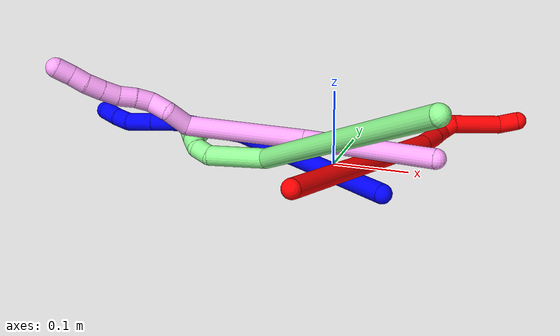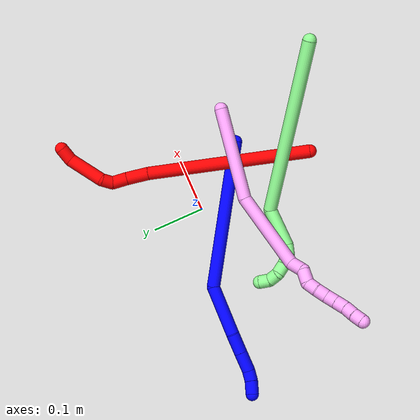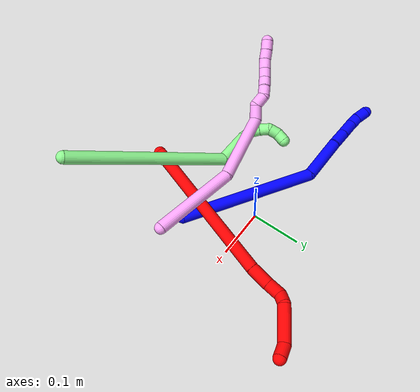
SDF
<sdf version="1.7">
 <world name="default">
  <model name="1">
   <static>0</static>
   <link name="1">
    <collision name="collision-cylinder-e_1_1_4">
     <pose>-0.089953 0.033095 -0.102638 -2.82968 -0.695203 2.32269</pose>
     <geometry><cylinder><radius>0.0125</radius><length>0.280866</length></cylinder></geometry>
     <surface>
      <friction><ode><mu>1.16</mu><mu2>1.16</mu2><slip1>0</slip1><slip2>0</slip2></ode></friction>
      <contact><ode><kp>1e+06</kp><kd>1</kd><max_vel>0</max_vel><min_depth>0.001</min_depth></ode></contact>
     </surface>
    </collision>
    <visual name="visual-cylinder-e_1_1_4">
     <pose>-0.089953 0.033095 -0.102638 -2.82968 -0.695203 2.32269</pose>
     <geometry><cylinder><radius>0.0125</radius><length>0.280866</length></cylinder></geometry>
     <material><ambient>0 0 1 1</ambient></material>
    </visual>
    <collision name="collision-cylinder-e_2_4_5">
     <pose>-0.217499 0.092152 -0.220171 -2.09164 -0.898374 1.38825</pose>
     <geometry><cylinder><radius>0.0125</radius><length>0.096107</length></cylinder></geometry>
     <surface>
      <friction><ode><mu>1.16</mu><mu2>1.16</mu2><slip1>0</slip1><slip2>0</slip2></ode></friction>
      <contact><ode><kp>1e+06</kp><kd>1</kd><max_vel>0</max_vel><min_depth>0.001</min_depth></ode></contact>
     </surface>
    </collision>
    <visual name="visual-cylinder-e_2_4_5">
     <pose>-0.217499 0.092152 -0.220171 -2.09164 -0.898374 1.38825</pose>
     <geometry><cylinder><radius>0.0125</radius><length>0.096107</length></cylinder></geometry>
     <material><ambient>0 0 1 1</ambient></material>
    </visual>
    <collision name="collision-cylinder-e_3_5_6">
     <pose>-0.272067 0.125997 -0.240055 -2.13517 -1.06829 1.64261</pose>
     <geometry><cylinder><radius>0.0125</radius><length>0.038739</length></cylinder></geometry>
     <surface>
      <friction><ode><mu>1.16</mu><mu2>1.16</mu2><slip1>0</slip1><slip2>0</slip2></ode></friction>
      <contact><ode><kp>1e+06</kp><kd>1</kd><max_vel>0</max_vel><min_depth>0.001</min_depth></ode></contact>
     </surface>
    </collision>
    <visual name="visual-cylinder-e_3_5_6">
     <pose>-0.272067 0.125997 -0.240055 -2.13517 -1.06829 1.64261</pose>
     <geometry><cylinder><radius>0.0125</radius><length>0.038739</length></cylinder></geometry>
     <material><ambient>0 0 1 1</ambient></material>
    </visual>
    <collision name="collision-cylinder-e_4_6_7">
     <pose>-0.306168 0.142029 -0.249932 -2.11099 -1.06421 1.60958</pose>
     <geometry><cylinder><radius>0.0125</radius><length>0.039171</length></cylinder></geometry>
     <surface>
      <friction><ode><mu>1.16</mu><mu2>1.16</mu2><slip1>0</slip1><slip2>0</slip2></ode></friction>
      <contact><ode><kp>1e+06</kp><kd>1</kd><max_vel>0</max_vel><min_depth>0.001</min_depth></ode></contact>
     </surface>
    </collision>
    <visual name="visual-cylinder-e_4_6_7">
     <pose>-0.306168 0.142029 -0.249932 -2.11099 -1.06421 1.60958</pose>
     <geometry><cylinder><radius>0.0125</radius><length>0.039171</length></cylinder></geometry>
     <material><ambient>0 0 1 1</ambient></material>
    </visual>
    <collision name="collision-cylinder-e_5_7_8">
     <pose>-0.330048 0.156191 -0.259514 -2.23375 -0.724807 1.32124</pose>
     <geometry><cylinder><radius>0.0125</radius><length>0.020378</length></cylinder></geometry>
     <surface>
      <friction><ode><mu>1.16</mu><mu2>1.16</mu2><slip1>0</slip1><slip2>0</slip2></ode></friction>
      <contact><ode><kp>1e+06</kp><kd>1</kd><max_vel>0</max_vel><min_depth>0.001</min_depth></ode></contact>
     </surface>
    </collision>
    <visual name="visual-cylinder-e_5_7_8">
     <pose>-0.330048 0.156191 -0.259514 -2.23375 -0.724807 1.32124</pose>
     <geometry><cylinder><radius>0.0125</radius><length>0.020378</length></cylinder></geometry>
     <material><ambient>0 0 1 1</ambient></material>
    </visual>
    <collision name="collision-cylinder-e_6_8_2">
     <pose>-0.344292 0.1685 -0.271777 -2.44764 -0.650235 1.50061</pose>
     <geometry><cylinder><radius>0.0125</radius><length>0.02474</length></cylinder></geometry>
     <surface>
      <friction><ode><mu>1.16</mu><mu2>1.16</mu2><slip1>0</slip1><slip2>0</slip2></ode></friction>
      <contact><ode><kp>1e+06</kp><kd>1</kd><max_vel>0</max_vel><min_depth>0.001</min_depth></ode></contact>
     </surface>
    </collision>
    <visual name="visual-cylinder-e_6_8_2">
     <pose>-0.344292 0.1685 -0.271777 -2.44764 -0.650235 1.50061</pose>
     <geometry><cylinder><radius>0.0125</radius><length>0.02474</length></cylinder></geometry>
     <material><ambient>0 0 1 1</ambient></material>
    </visual>
    <collision name="collision-sphere-2">
     <pose>-0.35178 0.174797 -0.279345 0 -0 0</pose>
     <geometry><sphere><radius>0.0125</radius></sphere></geometry>
     <surface>
      <friction><ode><mu>1.16</mu><mu2>1.16</mu2><slip1>0</slip1><slip2>0</slip2></ode></friction>
      <contact><ode><kp>1e+06</kp><kd>1</kd><max_vel>0</max_vel><min_depth>0.001</min_depth></ode></contact>
     </surface>
    </collision>
    <visual name="visual-sphere-2">
     <pose>-0.35178 0.174797 -0.279345 0 -0 0</pose>
     <geometry><sphere><radius>0.0125</radius></sphere></geometry>
     <material><ambient>0 0 1 1</ambient></material>
    </visual>
    <collision name="collision-sphere-4">
     <pose>-0.179906 0.06619 -0.205276 0 -0 0</pose>
     <geometry><sphere><radius>0.0125</radius></sphere></geometry>
     <surface>
      <friction><ode><mu>1.16</mu><mu2>1.16</mu2><slip1>0</slip1><slip2>0</slip2></ode></friction>
      <contact><ode><kp>1e+06</kp><kd>1</kd><max_vel>0</max_vel><min_depth>0.001</min_depth></ode></contact>
     </surface>
    </collision>
    <visual name="visual-sphere-4">
     <pose>-0.179906 0.06619 -0.205276 0 -0 0</pose>
     <geometry><sphere><radius>0.0125</radius></sphere></geometry>
     <material><ambient>0 0 1 1</ambient></material>
    </visual>
    <collision name="collision-sphere-1">
     <geometry><sphere><radius>0.0125</radius></sphere></geometry>
     <surface>
      <friction><ode><mu>1.16</mu><mu2>1.16</mu2><slip1>0</slip1><slip2>0</slip2></ode></friction>
      <contact><ode><kp>1e+06</kp><kd>1</kd><max_vel>0</max_vel><min_depth>0.001</min_depth></ode></contact>
     </surface>
    </collision>
    <visual name="visual-sphere-1">
     <geometry><sphere><radius>0.0125</radius></sphere></geometry>
     <material><ambient>0 0 1 1</ambient></material>
    </visual>
    <collision name="collision-sphere-8">
     <pose>-0.336803 0.162203 -0.264208 0 -0 0</pose>
     <geometry><sphere><radius>0.0125</radius></sphere></geometry>
     <surface>
      <friction><ode><mu>1.16</mu><mu2>1.16</mu2><slip1>0</slip1><slip2>0</slip2></ode></friction>
      <contact><ode><kp>1e+06</kp><kd>1</kd><max_vel>0</max_vel><min_depth>0.001</min_depth></ode></contact>
     </surface>
    </collision>
    <visual name="visual-sphere-8">
     <pose>-0.336803 0.162203 -0.264208 0 -0 0</pose>
     <geometry><sphere><radius>0.0125</radius></sphere></geometry>
     <material><ambient>0 0 1 1</ambient></material>
    </visual>
    <collision name="collision-sphere-5">
     <pose>-0.255092 0.118115 -0.235065 0 -0 0</pose>
     <geometry><sphere><radius>0.0125</radius></sphere></geometry>
     <surface>
      <friction><ode><mu>1.16</mu><mu2>1.16</mu2><slip1>0</slip1><slip2>0</slip2></ode></friction>
      <contact><ode><kp>1e+06</kp><kd>1</kd><max_vel>0</max_vel><min_depth>0.001</min_depth></ode></contact>
     </surface>
    </collision>
    <visual name="visual-sphere-5">
     <pose>-0.255092 0.118115 -0.235065 0 -0 0</pose>
     <geometry><sphere><radius>0.0125</radius></sphere></geometry>
     <material><ambient>0 0 1 1</ambient></material>
    </visual>
    <collision name="collision-sphere-6">
     <pose>-0.289042 0.133879 -0.245045 0 -0 0</pose>
     <geometry><sphere><radius>0.0125</radius></sphere></geometry>
     <surface>
      <friction><ode><mu>1.16</mu><mu2>1.16</mu2><slip1>0</slip1><slip2>0</slip2></ode></friction>
      <contact><ode><kp>1e+06</kp><kd>1</kd><max_vel>0</max_vel><min_depth>0.001</min_depth></ode></contact>
     </surface>
    </collision>
    <visual name="visual-sphere-6">
     <pose>-0.289042 0.133879 -0.245045 0 -0 0</pose>
     <geometry><sphere><radius>0.0125</radius></sphere></geometry>
     <material><ambient>0 0 1 1</ambient></material>
    </visual>
    <collision name="collision-sphere-7">
     <pose>-0.323293 0.150179 -0.254819 0 -0 0</pose>
     <geometry><sphere><radius>0.0125</radius></sphere></geometry>
     <surface>
      <friction><ode><mu>1.16</mu><mu2>1.16</mu2><slip1>0</slip1><slip2>0</slip2></ode></friction>
      <contact><ode><kp>1e+06</kp><kd>1</kd><max_vel>0</max_vel><min_depth>0.001</min_depth></ode></contact>
     </surface>
    </collision>
    <visual name="visual-sphere-7">
     <pose>-0.323293 0.150179 -0.254819 0 -0 0</pose>
     <geometry><sphere><radius>0.0125</radius></sphere></geometry>
     <material><ambient>0 0 1 1</ambient></material>
    </visual>
    <inertial>
     <pose>-0.167887 0.071895 -0.162178 0 -0 0</pose>
     <mass>0.5</mass>
     <inertia>
      <ixx>0.000106</ixx>
      <ixy>0</ixy>
      <ixz>0</ixz>
      <iyy>0.002642</iyy>
      <iyz>0</iyz>
      <izz>0.000755</izz>
     </inertia>
    </inertial>
   </link>
   <pose>0.091762 -0.111055 0.012077 1.858 -0.58859 0.115646</pose>
  </model>
  <model name="2">
   <static>0</static>
   <link name="2">
    <collision name="collision-cylinder-e_1_1_4">
     <pose>0.031861 0.079482 -0.128216 -2.58666 0.208144 -0.703006</pose>
     <geometry><cylinder><radius>0.0125</radius><length>0.308362</length></cylinder></geometry>
     <surface>
      <friction><ode><mu>1.16</mu><mu2>1.16</mu2><slip1>0</slip1><slip2>0</slip2></ode></friction>
      <contact><ode><kp>1e+06</kp><kd>1</kd><max_vel>0</max_vel><min_depth>0.001</min_depth></ode></contact>
     </surface>
    </collision>
    <visual name="visual-cylinder-e_1_1_4">
     <pose>0.031861 0.079482 -0.128216 -2.58666 0.208144 -0.703006</pose>
     <geometry><cylinder><radius>0.0125</radius><length>0.308362</length></cylinder></geometry>
     <material><ambient>1 0 0 1</ambient></material>
    </visual>
    <collision name="collision-cylinder-e_2_4_5">
     <pose>0.065648 0.169476 -0.274517 -2.61505 0.091858 -0.337799</pose>
     <geometry><cylinder><radius>0.0125</radius><length>0.042014</length></cylinder></geometry>
     <surface>
      <friction><ode><mu>1.16</mu><mu2>1.16</mu2><slip1>0</slip1><slip2>0</slip2></ode></friction>
      <contact><ode><kp>1e+06</kp><kd>1</kd><max_vel>0</max_vel><min_depth>0.001</min_depth></ode></contact>
     </surface>
    </collision>
    <visual name="visual-cylinder-e_2_4_5">
     <pose>0.065648 0.169476 -0.274517 -2.61505 0.091858 -0.337799</pose>
     <geometry><cylinder><radius>0.0125</radius><length>0.042014</length></cylinder></geometry>
     <material><ambient>1 0 0 1</ambient></material>
    </visual>
    <collision name="collision-cylinder-e_3_5_6">
     <pose>0.068086 0.187019 -0.305416 -2.63981 0.034945 -0.136154</pose>
     <geometry><cylinder><radius>0.0125</radius><length>0.029249</length></cylinder></geometry>
     <surface>
      <friction><ode><mu>1.16</mu><mu2>1.16</mu2><slip1>0</slip1><slip2>0</slip2></ode></friction>
      <contact><ode><kp>1e+06</kp><kd>1</kd><max_vel>0</max_vel><min_depth>0.001</min_depth></ode></contact>
     </surface>
    </collision>
    <visual name="visual-cylinder-e_3_5_6">
     <pose>0.068086 0.187019 -0.305416 -2.63981 0.034945 -0.136154</pose>
     <geometry><cylinder><radius>0.0125</radius><length>0.029249</length></cylinder></geometry>
     <material><ambient>1 0 0 1</ambient></material>
    </visual>
    <collision name="collision-cylinder-e_4_6_7">
     <pose>0.069934 0.204233 -0.322584 -1.97481 0.120145 -0.181749</pose>
     <geometry><cylinder><radius>0.0125</radius><length>0.022312</length></cylinder></geometry>
     <surface>
      <friction><ode><mu>1.16</mu><mu2>1.16</mu2><slip1>0</slip1><slip2>0</slip2></ode></friction>
      <contact><ode><kp>1e+06</kp><kd>1</kd><max_vel>0</max_vel><min_depth>0.001</min_depth></ode></contact>
     </surface>
    </collision>
    <visual name="visual-cylinder-e_4_6_7">
     <pose>0.069934 0.204233 -0.322584 -1.97481 0.120145 -0.181749</pose>
     <geometry><cylinder><radius>0.0125</radius><length>0.022312</length></cylinder></geometry>
     <material><ambient>1 0 0 1</ambient></material>
    </visual>
    <collision name="collision-cylinder-e_5_7_8">
     <pose>0.092484 0.240317 -0.338347 -1.98571 0.64318 -0.94449</pose>
     <geometry><cylinder><radius>0.0125</radius><length>0.070738</length></cylinder></geometry>
     <surface>
      <friction><ode><mu>1.16</mu><mu2>1.16</mu2><slip1>0</slip1><slip2>0</slip2></ode></friction>
      <contact><ode><kp>1e+06</kp><kd>1</kd><max_vel>0</max_vel><min_depth>0.001</min_depth></ode></contact>
     </surface>
    </collision>
    <visual name="visual-cylinder-e_5_7_8">
     <pose>0.092484 0.240317 -0.338347 -1.98571 0.64318 -0.94449</pose>
     <geometry><cylinder><radius>0.0125</radius><length>0.070738</length></cylinder></geometry>
     <material><ambient>1 0 0 1</ambient></material>
    </visual>
    <collision name="collision-cylinder-e_6_8_2">
     <pose>0.120108 0.278213 -0.348464 -1.46357 0.488544 -0.440458</pose>
     <geometry><cylinder><radius>0.0125</radius><length>0.027325</length></cylinder></geometry>
     <surface>
      <friction><ode><mu>1.16</mu><mu2>1.16</mu2><slip1>0</slip1><slip2>0</slip2></ode></friction>
      <contact><ode><kp>1e+06</kp><kd>1</kd><max_vel>0</max_vel><min_depth>0.001</min_depth></ode></contact>
     </surface>
    </collision>
    <visual name="visual-cylinder-e_6_8_2">
     <pose>0.120108 0.278213 -0.348464 -1.46357 0.488544 -0.440458</pose>
     <geometry><cylinder><radius>0.0125</radius><length>0.027325</length></cylinder></geometry>
     <material><ambient>1 0 0 1</ambient></material>
    </visual>
    <collision name="collision-sphere-2">
     <pose>0.126521 0.290207 -0.347173 0 -0 0</pose>
     <geometry><sphere><radius>0.0125</radius></sphere></geometry>
     <surface>
      <friction><ode><mu>1.16</mu><mu2>1.16</mu2><slip1>0</slip1><slip2>0</slip2></ode></friction>
      <contact><ode><kp>1e+06</kp><kd>1</kd><max_vel>0</max_vel><min_depth>0.001</min_depth></ode></contact>
     </surface>
    </collision>
    <visual name="visual-sphere-2">
     <pose>0.126521 0.290207 -0.347173 0 -0 0</pose>
     <geometry><sphere><radius>0.0125</radius></sphere></geometry>
     <material><ambient>1 0 0 1</ambient></material>
    </visual>
    <collision name="collision-sphere-4">
     <pose>0.063721 0.158964 -0.256432 0 -0 0</pose>
     <geometry><sphere><radius>0.0125</radius></sphere></geometry>
     <surface>
      <friction><ode><mu>1.16</mu><mu2>1.16</mu2><slip1>0</slip1><slip2>0</slip2></ode></friction>
      <contact><ode><kp>1e+06</kp><kd>1</kd><max_vel>0</max_vel><min_depth>0.001</min_depth></ode></contact>
     </surface>
    </collision>
    <visual name="visual-sphere-4">
     <pose>0.063721 0.158964 -0.256432 0 -0 0</pose>
     <geometry><sphere><radius>0.0125</radius></sphere></geometry>
     <material><ambient>1 0 0 1</ambient></material>
    </visual>
    <collision name="collision-sphere-1">
     <geometry><sphere><radius>0.0125</radius></sphere></geometry>
     <surface>
      <friction><ode><mu>1.16</mu><mu2>1.16</mu2><slip1>0</slip1><slip2>0</slip2></ode></friction>
      <contact><ode><kp>1e+06</kp><kd>1</kd><max_vel>0</max_vel><min_depth>0.001</min_depth></ode></contact>
     </surface>
    </collision>
    <visual name="visual-sphere-1">
     <geometry><sphere><radius>0.0125</radius></sphere></geometry>
     <material><ambient>1 0 0 1</ambient></material>
    </visual>
    <collision name="collision-sphere-8">
     <pose>0.113696 0.266218 -0.349755 0 -0 0</pose>
     <geometry><sphere><radius>0.0125</radius></sphere></geometry>
     <surface>
      <friction><ode><mu>1.16</mu><mu2>1.16</mu2><slip1>0</slip1><slip2>0</slip2></ode></friction>
      <contact><ode><kp>1e+06</kp><kd>1</kd><max_vel>0</max_vel><min_depth>0.001</min_depth></ode></contact>
     </surface>
    </collision>
    <visual name="visual-sphere-8">
     <pose>0.113696 0.266218 -0.349755 0 -0 0</pose>
     <geometry><sphere><radius>0.0125</radius></sphere></geometry>
     <material><ambient>1 0 0 1</ambient></material>
    </visual>
    <collision name="collision-sphere-5">
     <pose>0.067575 0.179989 -0.292602 0 -0 0</pose>
     <geometry><sphere><radius>0.0125</radius></sphere></geometry>
     <surface>
      <friction><ode><mu>1.16</mu><mu2>1.16</mu2><slip1>0</slip1><slip2>0</slip2></ode></friction>
      <contact><ode><kp>1e+06</kp><kd>1</kd><max_vel>0</max_vel><min_depth>0.001</min_depth></ode></contact>
     </surface>
    </collision>
    <visual name="visual-sphere-5">
     <pose>0.067575 0.179989 -0.292602 0 -0 0</pose>
     <geometry><sphere><radius>0.0125</radius></sphere></geometry>
     <material><ambient>1 0 0 1</ambient></material>
    </visual>
    <collision name="collision-sphere-6">
     <pose>0.068597 0.194049 -0.31823 0 -0 0</pose>
     <geometry><sphere><radius>0.0125</radius></sphere></geometry>
     <surface>
      <friction><ode><mu>1.16</mu><mu2>1.16</mu2><slip1>0</slip1><slip2>0</slip2></ode></friction>
      <contact><ode><kp>1e+06</kp><kd>1</kd><max_vel>0</max_vel><min_depth>0.001</min_depth></ode></contact>
     </surface>
    </collision>
    <visual name="visual-sphere-6">
     <pose>0.068597 0.194049 -0.31823 0 -0 0</pose>
     <geometry><sphere><radius>0.0125</radius></sphere></geometry>
     <material><ambient>1 0 0 1</ambient></material>
    </visual>
    <collision name="collision-sphere-7">
     <pose>0.071271 0.214416 -0.326938 0 -0 0</pose>
     <geometry><sphere><radius>0.0125</radius></sphere></geometry>
     <surface>
      <friction><ode><mu>1.16</mu><mu2>1.16</mu2><slip1>0</slip1><slip2>0</slip2></ode></friction>
      <contact><ode><kp>1e+06</kp><kd>1</kd><max_vel>0</max_vel><min_depth>0.001</min_depth></ode></contact>
     </surface>
    </collision>
    <visual name="visual-sphere-7">
     <pose>0.071271 0.214416 -0.326938 0 -0 0</pose>
     <geometry><sphere><radius>0.0125</radius></sphere></geometry>
     <material><ambient>1 0 0 1</ambient></material>
    </visual>
    <inertial>
     <pose>0.051917 0.132516 -0.201314 0 -0 0</pose>
     <mass>0.5</mass>
     <inertia>
      <ixx>0.000294</ixx>
      <ixy>0</ixy>
      <ixz>0</ixz>
      <iyy>-0.002977</iyy>
      <iyz>0</iyz>
      <izz>-0.001855</izz>
     </inertia>
    </inertial>
   </link>
   <pose>0.016191 -0.227602 0.054486 1.05165 0.807233 -0.120804</pose>
  </model>
  <model name="4">
   <static>0</static>
   <link name="4">
    <collision name="collision-cylinder-e_1_1_4">
     <pose>-0.076758 0.009958 -0.037444 -2.88166 -1.10333 2.72304</pose>
     <geometry><cylinder><radius>0.0125</radius><length>0.171966</length></cylinder></geometry>
     <surface>
      <friction><ode><mu>1.16</mu><mu2>1.16</mu2><slip1>0</slip1><slip2>0</slip2></ode></friction>
      <contact><ode><kp>1e+06</kp><kd>1</kd><max_vel>0</max_vel><min_depth>0.001</min_depth></ode></contact>
     </surface>
    </collision>
    <visual name="visual-cylinder-e_1_1_4">
     <pose>-0.076758 0.009958 -0.037444 -2.88166 -1.10333 2.72304</pose>
     <geometry><cylinder><radius>0.0125</radius><length>0.171966</length></cylinder></geometry>
     <material><ambient>1 0.65098 0.996078 1</ambient></material>
    </visual>
    <collision name="collision-cylinder-e_2_4_5">
     <pose>-0.203613 0.02215 -0.128858 -3.10024 -0.747765 3.03627</pose>
     <geometry><cylinder><radius>0.0125</radius><length>0.147341</length></cylinder></geometry>
     <surface>
      <friction><ode><mu>1.16</mu><mu2>1.16</mu2><slip1>0</slip1><slip2>0</slip2></ode></friction>
      <contact><ode><kp>1e+06</kp><kd>1</kd><max_vel>0</max_vel><min_depth>0.001</min_depth></ode></contact>
     </surface>
    </collision>
    <visual name="visual-cylinder-e_2_4_5">
     <pose>-0.203613 0.02215 -0.128858 -3.10024 -0.747765 3.03627</pose>
     <geometry><cylinder><radius>0.0125</radius><length>0.147341</length></cylinder></geometry>
     <material><ambient>1 0.65098 0.996078 1</ambient></material>
    </visual>
    <collision name="collision-cylinder-e_3_5_6">
     <pose>-0.258124 0.015868 -0.194791 2.52301 -0.292076 -0.86276</pose>
     <geometry><cylinder><radius>0.0125</radius><length>0.030665</length></cylinder></geometry>
     <surface>
      <friction><ode><mu>1.16</mu><mu2>1.16</mu2><slip1>0</slip1><slip2>0</slip2></ode></friction>
      <contact><ode><kp>1e+06</kp><kd>1</kd><max_vel>0</max_vel><min_depth>0.001</min_depth></ode></contact>
     </surface>
    </collision>
    <visual name="visual-cylinder-e_3_5_6">
     <pose>-0.258124 0.015868 -0.194791 2.52301 -0.292076 -0.86276</pose>
     <geometry><cylinder><radius>0.0125</radius><length>0.030665</length></cylinder></geometry>
     <material><ambient>1 0.65098 0.996078 1</ambient></material>
    </visual>
    <collision name="collision-cylinder-e_4_6_7">
     <pose>-0.273324 0.003867 -0.212944 2.62869 -0.988267 -2.23558</pose>
     <geometry><cylinder><radius>0.0125</radius><length>0.025831</length></cylinder></geometry>
     <surface>
      <friction><ode><mu>1.16</mu><mu2>1.16</mu2><slip1>0</slip1><slip2>0</slip2></ode></friction>
      <contact><ode><kp>1e+06</kp><kd>1</kd><max_vel>0</max_vel><min_depth>0.001</min_depth></ode></contact>
     </surface>
    </collision>
    <visual name="visual-cylinder-e_4_6_7">
     <pose>-0.273324 0.003867 -0.212944 2.62869 -0.988267 -2.23558</pose>
     <geometry><cylinder><radius>0.0125</radius><length>0.025831</length></cylinder></geometry>
     <material><ambient>1 0.65098 0.996078 1</ambient></material>
    </visual>
    <collision name="collision-cylinder-e_5_7_8">
     <pose>-0.288219 -0.001769 -0.228152 2.90764 -0.417282 -2.12821</pose>
     <geometry><cylinder><radius>0.0125</radius><length>0.02028</length></cylinder></geometry>
     <surface>
      <friction><ode><mu>1.16</mu><mu2>1.16</mu2><slip1>0</slip1><slip2>0</slip2></ode></friction>
      <contact><ode><kp>1e+06</kp><kd>1</kd><max_vel>0</max_vel><min_depth>0.001</min_depth></ode></contact>
     </surface>
    </collision>
    <visual name="visual-cylinder-e_5_7_8">
     <pose>-0.288219 -0.001769 -0.228152 2.90764 -0.417282 -2.12821</pose>
     <geometry><cylinder><radius>0.0125</radius><length>0.02028</length></cylinder></geometry>
     <material><ambient>1 0.65098 0.996078 1</ambient></material>
    </visual>
    <collision name="collision-cylinder-e_6_8_9">
     <pose>-0.29633 -0.004602 -0.247085 3.07268 -0.38276 -2.78944</pose>
     <geometry><cylinder><radius>0.0125</radius><length>0.021429</length></cylinder></geometry>
     <surface>
      <friction><ode><mu>1.16</mu><mu2>1.16</mu2><slip1>0</slip1><slip2>0</slip2></ode></friction>
      <contact><ode><kp>1e+06</kp><kd>1</kd><max_vel>0</max_vel><min_depth>0.001</min_depth></ode></contact>
     </surface>
    </collision>
    <visual name="visual-cylinder-e_6_8_9">
     <pose>-0.29633 -0.004602 -0.247085 3.07268 -0.38276 -2.78944</pose>
     <geometry><cylinder><radius>0.0125</radius><length>0.021429</length></cylinder></geometry>
     <material><ambient>1 0.65098 0.996078 1</ambient></material>
    </visual>
    <collision name="collision-cylinder-e_7_9_10">
     <pose>-0.303759 -0.008525 -0.266349 2.80812 -0.333508 -1.57091</pose>
     <geometry><cylinder><radius>0.0125</radius><length>0.02094</length></cylinder></geometry>
     <surface>
      <friction><ode><mu>1.16</mu><mu2>1.16</mu2><slip1>0</slip1><slip2>0</slip2></ode></friction>
      <contact><ode><kp>1e+06</kp><kd>1</kd><max_vel>0</max_vel><min_depth>0.001</min_depth></ode></contact>
     </surface>
    </collision>
    <visual name="visual-cylinder-e_7_9_10">
     <pose>-0.303759 -0.008525 -0.266349 2.80812 -0.333508 -1.57091</pose>
     <geometry><cylinder><radius>0.0125</radius><length>0.02094</length></cylinder></geometry>
     <material><ambient>1 0.65098 0.996078 1</ambient></material>
    </visual>
    <collision name="collision-cylinder-e_8_10_11">
     <pose>-0.310645 -0.015603 -0.285001 2.75018 -0.330971 -1.40021</pose>
     <geometry><cylinder><radius>0.0125</radius><length>0.021285</length></cylinder></geometry>
     <surface>
      <friction><ode><mu>1.16</mu><mu2>1.16</mu2><slip1>0</slip1><slip2>0</slip2></ode></friction>
      <contact><ode><kp>1e+06</kp><kd>1</kd><max_vel>0</max_vel><min_depth>0.001</min_depth></ode></contact>
     </surface>
    </collision>
    <visual name="visual-cylinder-e_8_10_11">
     <pose>-0.310645 -0.015603 -0.285001 2.75018 -0.330971 -1.40021</pose>
     <geometry><cylinder><radius>0.0125</radius><length>0.021285</length></cylinder></geometry>
     <material><ambient>1 0.65098 0.996078 1</ambient></material>
    </visual>
    <collision name="collision-cylinder-e_9_11_12">
     <pose>-0.318578 -0.02393 -0.302158 2.62242 -0.459423 -1.44385</pose>
     <geometry><cylinder><radius>0.0125</radius><length>0.020184</length></cylinder></geometry>
     <surface>
      <friction><ode><mu>1.16</mu><mu2>1.16</mu2><slip1>0</slip1><slip2>0</slip2></ode></friction>
      <contact><ode><kp>1e+06</kp><kd>1</kd><max_vel>0</max_vel><min_depth>0.001</min_depth></ode></contact>
     </surface>
    </collision>
    <visual name="visual-cylinder-e_9_11_12">
     <pose>-0.318578 -0.02393 -0.302158 2.62242 -0.459423 -1.44385</pose>
     <geometry><cylinder><radius>0.0125</radius><length>0.020184</length></cylinder></geometry>
     <material><ambient>1 0.65098 0.996078 1</ambient></material>
    </visual>
    <collision name="collision-cylinder-e_10_12_2">
     <pose>-0.326852 -0.032466 -0.318377 2.69098 -0.388023 -1.4174</pose>
     <geometry><cylinder><radius>0.0125</radius><length>0.02008</length></cylinder></geometry>
     <surface>
      <friction><ode><mu>1.16</mu><mu2>1.16</mu2><slip1>0</slip1><slip2>0</slip2></ode></friction>
      <contact><ode><kp>1e+06</kp><kd>1</kd><max_vel>0</max_vel><min_depth>0.001</min_depth></ode></contact>
     </surface>
    </collision>
    <visual name="visual-cylinder-e_10_12_2">
     <pose>-0.326852 -0.032466 -0.318377 2.69098 -0.388023 -1.4174</pose>
     <geometry><cylinder><radius>0.0125</radius><length>0.02008</length></cylinder></geometry>
     <material><ambient>1 0.65098 0.996078 1</ambient></material>
    </visual>
    <collision name="collision-sphere-2">
     <pose>-0.330651 -0.036513 -0.326743 0 -0 0</pose>
     <geometry><sphere><radius>0.0125</radius></sphere></geometry>
     <surface>
      <friction><ode><mu>1.16</mu><mu2>1.16</mu2><slip1>0</slip1><slip2>0</slip2></ode></friction>
      <contact><ode><kp>1e+06</kp><kd>1</kd><max_vel>0</max_vel><min_depth>0.001</min_depth></ode></contact>
     </surface>
    </collision>
    <visual name="visual-sphere-2">
     <pose>-0.330651 -0.036513 -0.326743 0 -0 0</pose>
     <geometry><sphere><radius>0.0125</radius></sphere></geometry>
     <material><ambient>1 0.65098 0.996078 1</ambient></material>
    </visual>
    <collision name="collision-sphere-12">
     <pose>-0.323053 -0.028418 -0.310011 0 -0 0</pose>
     <geometry><sphere><radius>0.0125</radius></sphere></geometry>
     <surface>
      <friction><ode><mu>1.16</mu><mu2>1.16</mu2><slip1>0</slip1><slip2>0</slip2></ode></friction>
      <contact><ode><kp>1e+06</kp><kd>1</kd><max_vel>0</max_vel><min_depth>0.001</min_depth></ode></contact>
     </surface>
    </collision>
    <visual name="visual-sphere-12">
     <pose>-0.323053 -0.028418 -0.310011 0 -0 0</pose>
     <geometry><sphere><radius>0.0125</radius></sphere></geometry>
     <material><ambient>1 0.65098 0.996078 1</ambient></material>
    </visual>
    <collision name="collision-sphere-11">
     <pose>-0.314103 -0.019442 -0.294304 0 -0 0</pose>
     <geometry><sphere><radius>0.0125</radius></sphere></geometry>
     <surface>
      <friction><ode><mu>1.16</mu><mu2>1.16</mu2><slip1>0</slip1><slip2>0</slip2></ode></friction>
      <contact><ode><kp>1e+06</kp><kd>1</kd><max_vel>0</max_vel><min_depth>0.001</min_depth></ode></contact>
     </surface>
    </collision>
    <visual name="visual-sphere-11">
     <pose>-0.314103 -0.019442 -0.294304 0 -0 0</pose>
     <geometry><sphere><radius>0.0125</radius></sphere></geometry>
     <material><ambient>1 0.65098 0.996078 1</ambient></material>
    </visual>
    <collision name="collision-sphere-10">
     <pose>-0.307186 -0.011763 -0.275697 0 -0 0</pose>
     <geometry><sphere><radius>0.0125</radius></sphere></geometry>
     <surface>
      <friction><ode><mu>1.16</mu><mu2>1.16</mu2><slip1>0</slip1><slip2>0</slip2></ode></friction>
      <contact><ode><kp>1e+06</kp><kd>1</kd><max_vel>0</max_vel><min_depth>0.001</min_depth></ode></contact>
     </surface>
    </collision>
    <visual name="visual-sphere-10">
     <pose>-0.307186 -0.011763 -0.275697 0 -0 0</pose>
     <geometry><sphere><radius>0.0125</radius></sphere></geometry>
     <material><ambient>1 0.65098 0.996078 1</ambient></material>
    </visual>
    <collision name="collision-sphere-9">
     <pose>-0.300332 -0.005287 -0.257001 0 -0 0</pose>
     <geometry><sphere><radius>0.0125</radius></sphere></geometry>
     <surface>
      <friction><ode><mu>1.16</mu><mu2>1.16</mu2><slip1>0</slip1><slip2>0</slip2></ode></friction>
      <contact><ode><kp>1e+06</kp><kd>1</kd><max_vel>0</max_vel><min_depth>0.001</min_depth></ode></contact>
     </surface>
    </collision>
    <visual name="visual-sphere-9">
     <pose>-0.300332 -0.005287 -0.257001 0 -0 0</pose>
     <geometry><sphere><radius>0.0125</radius></sphere></geometry>
     <material><ambient>1 0.65098 0.996078 1</ambient></material>
    </visual>
    <collision name="collision-sphere-4">
     <pose>-0.153517 0.019917 -0.074889 0 -0 0</pose>
     <geometry><sphere><radius>0.0125</radius></sphere></geometry>
     <surface>
      <friction><ode><mu>1.16</mu><mu2>1.16</mu2><slip1>0</slip1><slip2>0</slip2></ode></friction>
      <contact><ode><kp>1e+06</kp><kd>1</kd><max_vel>0</max_vel><min_depth>0.001</min_depth></ode></contact>
     </surface>
    </collision>
    <visual name="visual-sphere-4">
     <pose>-0.153517 0.019917 -0.074889 0 -0 0</pose>
     <geometry><sphere><radius>0.0125</radius></sphere></geometry>
     <material><ambient>1 0.65098 0.996078 1</ambient></material>
    </visual>
    <collision name="collision-sphere-1">
     <geometry><sphere><radius>0.0125</radius></sphere></geometry>
     <surface>
      <friction><ode><mu>1.16</mu><mu2>1.16</mu2><slip1>0</slip1><slip2>0</slip2></ode></friction>
      <contact><ode><kp>1e+06</kp><kd>1</kd><max_vel>0</max_vel><min_depth>0.001</min_depth></ode></contact>
     </surface>
    </collision>
    <visual name="visual-sphere-1">
     <geometry><sphere><radius>0.0125</radius></sphere></geometry>
     <material><ambient>1 0.65098 0.996078 1</ambient></material>
    </visual>
    <collision name="collision-sphere-8">
     <pose>-0.292328 -0.003918 -0.23717 0 -0 0</pose>
     <geometry><sphere><radius>0.0125</radius></sphere></geometry>
     <surface>
      <friction><ode><mu>1.16</mu><mu2>1.16</mu2><slip1>0</slip1><slip2>0</slip2></ode></friction>
      <contact><ode><kp>1e+06</kp><kd>1</kd><max_vel>0</max_vel><min_depth>0.001</min_depth></ode></contact>
     </surface>
    </collision>
    <visual name="visual-sphere-8">
     <pose>-0.292328 -0.003918 -0.23717 0 -0 0</pose>
     <geometry><sphere><radius>0.0125</radius></sphere></geometry>
     <material><ambient>1 0.65098 0.996078 1</ambient></material>
    </visual>
    <collision name="collision-sphere-5">
     <pose>-0.253709 0.024383 -0.182828 0 -0 0</pose>
     <geometry><sphere><radius>0.0125</radius></sphere></geometry>
     <surface>
      <friction><ode><mu>1.16</mu><mu2>1.16</mu2><slip1>0</slip1><slip2>0</slip2></ode></friction>
      <contact><ode><kp>1e+06</kp><kd>1</kd><max_vel>0</max_vel><min_depth>0.001</min_depth></ode></contact>
     </surface>
    </collision>
    <visual name="visual-sphere-5">
     <pose>-0.253709 0.024383 -0.182828 0 -0 0</pose>
     <geometry><sphere><radius>0.0125</radius></sphere></geometry>
     <material><ambient>1 0.65098 0.996078 1</ambient></material>
    </visual>
    <collision name="collision-sphere-6">
     <pose>-0.262539 0.007353 -0.206753 0 -0 0</pose>
     <geometry><sphere><radius>0.0125</radius></sphere></geometry>
     <surface>
      <friction><ode><mu>1.16</mu><mu2>1.16</mu2><slip1>0</slip1><slip2>0</slip2></ode></friction>
      <contact><ode><kp>1e+06</kp><kd>1</kd><max_vel>0</max_vel><min_depth>0.001</min_depth></ode></contact>
     </surface>
    </collision>
    <visual name="visual-sphere-6">
     <pose>-0.262539 0.007353 -0.206753 0 -0 0</pose>
     <geometry><sphere><radius>0.0125</radius></sphere></geometry>
     <material><ambient>1 0.65098 0.996078 1</ambient></material>
    </visual>
    <collision name="collision-sphere-7">
     <pose>-0.284109 0.00038 -0.219135 0 -0 0</pose>
     <geometry><sphere><radius>0.0125</radius></sphere></geometry>
     <surface>
      <friction><ode><mu>1.16</mu><mu2>1.16</mu2><slip1>0</slip1><slip2>0</slip2></ode></friction>
      <contact><ode><kp>1e+06</kp><kd>1</kd><max_vel>0</max_vel><min_depth>0.001</min_depth></ode></contact>
     </surface>
    </collision>
    <visual name="visual-sphere-7">
     <pose>-0.284109 0.00038 -0.219135 0 -0 0</pose>
     <geometry><sphere><radius>0.0125</radius></sphere></geometry>
     <material><ambient>1 0.65098 0.996078 1</ambient></material>
    </visual>
    <inertial>
     <pose>-0.192674 0.007565 -0.141912 0 -0 0</pose>
     <mass>0.5</mass>
     <inertia>
      <ixx>-0.000313</ixx>
      <ixy>0</ixy>
      <ixz>0</ixz>
      <iyy>0.000781</iyy>
      <iyz>0</iyz>
      <izz>0.000498</izz>
     </inertia>
    </inertial>
   </link>
   <pose>0.154364 -0.107976 0.062671 -1.6875 0.051055 -0.623779</pose>
  </model>
  <model name="13">
   <static>0</static>
   <link name="13">
    <collision name="collision-cylinder-e_1_1_4">
     <pose>-0.017847 0.033669 -0.157807 -2.93139 -0.110159 0.963223</pose>
     <geometry><cylinder><radius>0.0125</radius><length>0.324686</length></cylinder></geometry>
     <surface>
      <friction><ode><mu>1.16</mu><mu2>1.16</mu2><slip1>0</slip1><slip2>0</slip2></ode></friction>
      <contact><ode><kp>1e+06</kp><kd>1</kd><max_vel>0</max_vel><min_depth>0.001</min_depth></ode></contact>
     </surface>
    </collision>
    <visual name="visual-cylinder-e_1_1_4">
     <pose>-0.017847 0.033669 -0.157807 -2.93139 -0.110159 0.963223</pose>
     <geometry><cylinder><radius>0.0125</radius><length>0.324686</length></cylinder></geometry>
     <material><ambient>0.564706 0.984314 0.572549 1</ambient></material>
    </visual>
    <collision name="collision-cylinder-e_2_4_5">
     <pose>-0.055077 0.054957 -0.344687 2.73901 -0.550191 -1.88965</pose>
     <geometry><cylinder><radius>0.0125</radius><length>0.07414</length></cylinder></geometry>
     <surface>
      <friction><ode><mu>1.16</mu><mu2>1.16</mu2><slip1>0</slip1><slip2>0</slip2></ode></friction>
      <contact><ode><kp>1e+06</kp><kd>1</kd><max_vel>0</max_vel><min_depth>0.001</min_depth></ode></contact>
     </surface>
    </collision>
    <visual name="visual-cylinder-e_2_4_5">
     <pose>-0.055077 0.054957 -0.344687 2.73901 -0.550191 -1.88965</pose>
     <geometry><cylinder><radius>0.0125</radius><length>0.07414</length></cylinder></geometry>
     <material><ambient>0.564706 0.984314 0.572549 1</ambient></material>
    </visual>
    <collision name="collision-cylinder-e_3_5_6">
     <pose>-0.082301 0.043084 -0.380433 -3.06568 -0.864326 2.9773</pose>
     <geometry><cylinder><radius>0.0125</radius><length>0.020619</length></cylinder></geometry>
     <surface>
      <friction><ode><mu>1.16</mu><mu2>1.16</mu2><slip1>0</slip1><slip2>0</slip2></ode></friction>
      <contact><ode><kp>1e+06</kp><kd>1</kd><max_vel>0</max_vel><min_depth>0.001</min_depth></ode></contact>
     </surface>
    </collision>
    <visual name="visual-cylinder-e_3_5_6">
     <pose>-0.082301 0.043084 -0.380433 -3.06568 -0.864326 2.9773</pose>
     <geometry><cylinder><radius>0.0125</radius><length>0.020619</length></cylinder></geometry>
     <material><ambient>0.564706 0.984314 0.572549 1</ambient></material>
    </visual>
    <collision name="collision-cylinder-e_4_6_7">
     <pose>-0.096099 0.049376 -0.392687 -2.33825 -0.637761 1.32142</pose>
     <geometry><cylinder><radius>0.0125</radius><length>0.020008</length></cylinder></geometry>
     <surface>
      <friction><ode><mu>1.16</mu><mu2>1.16</mu2><slip1>0</slip1><slip2>0</slip2></ode></friction>
      <contact><ode><kp>1e+06</kp><kd>1</kd><max_vel>0</max_vel><min_depth>0.001</min_depth></ode></contact>
     </surface>
    </collision>
    <visual name="visual-cylinder-e_4_6_7">
     <pose>-0.096099 0.049376 -0.392687 -2.33825 -0.637761 1.32142</pose>
     <geometry><cylinder><radius>0.0125</radius><length>0.020008</length></cylinder></geometry>
     <material><ambient>0.564706 0.984314 0.572549 1</ambient></material>
    </visual>
    <collision name="collision-cylinder-e_5_7_8">
     <pose>-0.106739 0.061637 -0.404341 -2.32403 -0.4854 1.03846</pose>
     <geometry><cylinder><radius>0.0125</radius><length>0.020078</length></cylinder></geometry>
     <surface>
      <friction><ode><mu>1.16</mu><mu2>1.16</mu2><slip1>0</slip1><slip2>0</slip2></ode></friction>
      <contact><ode><kp>1e+06</kp><kd>1</kd><max_vel>0</max_vel><min_depth>0.001</min_depth></ode></contact>
     </surface>
    </collision>
    <visual name="visual-cylinder-e_5_7_8">
     <pose>-0.106739 0.061637 -0.404341 -2.32403 -0.4854 1.03846</pose>
     <geometry><cylinder><radius>0.0125</radius><length>0.020078</length></cylinder></geometry>
     <material><ambient>0.564706 0.984314 0.572549 1</ambient></material>
    </visual>
    <collision name="collision-cylinder-e_6_8_9">
     <pose>-0.11015 0.075182 -0.417635 -2.36692 0.125286 -0.305125</pose>
     <geometry><cylinder><radius>0.0125</radius><length>0.020367</length></cylinder></geometry>
     <surface>
      <friction><ode><mu>1.16</mu><mu2>1.16</mu2><slip1>0</slip1><slip2>0</slip2></ode></friction>
      <contact><ode><kp>1e+06</kp><kd>1</kd><max_vel>0</max_vel><min_depth>0.001</min_depth></ode></contact>
     </surface>
    </collision>
    <visual name="visual-cylinder-e_6_8_9">
     <pose>-0.11015 0.075182 -0.417635 -2.36692 0.125286 -0.305125</pose>
     <geometry><cylinder><radius>0.0125</radius><length>0.020367</length></cylinder></geometry>
     <material><ambient>0.564706 0.984314 0.572549 1</ambient></material>
    </visual>
    <collision name="collision-cylinder-e_7_9_2">
     <pose>-0.105772 0.091251 -0.428073 -1.91414 0.314169 -0.442311</pose>
     <geometry><cylinder><radius>0.0125</radius><length>0.020103</length></cylinder></geometry>
     <surface>
      <friction><ode><mu>1.16</mu><mu2>1.16</mu2><slip1>0</slip1><slip2>0</slip2></ode></friction>
      <contact><ode><kp>1e+06</kp><kd>1</kd><max_vel>0</max_vel><min_depth>0.001</min_depth></ode></contact>
     </surface>
    </collision>
    <visual name="visual-cylinder-e_7_9_2">
     <pose>-0.105772 0.091251 -0.428073 -1.91414 0.314169 -0.442311</pose>
     <geometry><cylinder><radius>0.0125</radius><length>0.020103</length></cylinder></geometry>
     <material><ambient>0.564706 0.984314 0.572549 1</ambient></material>
    </visual>
    <collision name="collision-sphere-2">
     <pose>-0.102666 0.100253 -0.431292 0 -0 0</pose>
     <geometry><sphere><radius>0.0125</radius></sphere></geometry>
     <surface>
      <friction><ode><mu>1.16</mu><mu2>1.16</mu2><slip1>0</slip1><slip2>0</slip2></ode></friction>
      <contact><ode><kp>1e+06</kp><kd>1</kd><max_vel>0</max_vel><min_depth>0.001</min_depth></ode></contact>
     </surface>
    </collision>
    <visual name="visual-sphere-2">
     <pose>-0.102666 0.100253 -0.431292 0 -0 0</pose>
     <geometry><sphere><radius>0.0125</radius></sphere></geometry>
     <material><ambient>0.564706 0.984314 0.572549 1</ambient></material>
    </visual>
    <collision name="collision-sphere-9">
     <pose>-0.108878 0.08225 -0.424855 0 -0 0</pose>
     <geometry><sphere><radius>0.0125</radius></sphere></geometry>
     <surface>
      <friction><ode><mu>1.16</mu><mu2>1.16</mu2><slip1>0</slip1><slip2>0</slip2></ode></friction>
      <contact><ode><kp>1e+06</kp><kd>1</kd><max_vel>0</max_vel><min_depth>0.001</min_depth></ode></contact>
     </surface>
    </collision>
    <visual name="visual-sphere-9">
     <pose>-0.108878 0.08225 -0.424855 0 -0 0</pose>
     <geometry><sphere><radius>0.0125</radius></sphere></geometry>
     <material><ambient>0.564706 0.984314 0.572549 1</ambient></material>
    </visual>
    <collision name="collision-sphere-4">
     <pose>-0.035695 0.067338 -0.315614 0 -0 0</pose>
     <geometry><sphere><radius>0.0125</radius></sphere></geometry>
     <surface>
      <friction><ode><mu>1.16</mu><mu2>1.16</mu2><slip1>0</slip1><slip2>0</slip2></ode></friction>
      <contact><ode><kp>1e+06</kp><kd>1</kd><max_vel>0</max_vel><min_depth>0.001</min_depth></ode></contact>
     </surface>
    </collision>
    <visual name="visual-sphere-4">
     <pose>-0.035695 0.067338 -0.315614 0 -0 0</pose>
     <geometry><sphere><radius>0.0125</radius></sphere></geometry>
     <material><ambient>0.564706 0.984314 0.572549 1</ambient></material>
    </visual>
    <collision name="collision-sphere-1">
     <geometry><sphere><radius>0.0125</radius></sphere></geometry>
     <surface>
      <friction><ode><mu>1.16</mu><mu2>1.16</mu2><slip1>0</slip1><slip2>0</slip2></ode></friction>
      <contact><ode><kp>1e+06</kp><kd>1</kd><max_vel>0</max_vel><min_depth>0.001</min_depth></ode></contact>
     </surface>
    </collision>
    <visual name="visual-sphere-1">
     <geometry><sphere><radius>0.0125</radius></sphere></geometry>
     <material><ambient>0.564706 0.984314 0.572549 1</ambient></material>
    </visual>
    <collision name="collision-sphere-8">
     <pose>-0.111423 0.068115 -0.410414 0 -0 0</pose>
     <geometry><sphere><radius>0.0125</radius></sphere></geometry>
     <surface>
      <friction><ode><mu>1.16</mu><mu2>1.16</mu2><slip1>0</slip1><slip2>0</slip2></ode></friction>
      <contact><ode><kp>1e+06</kp><kd>1</kd><max_vel>0</max_vel><min_depth>0.001</min_depth></ode></contact>
     </surface>
    </collision>
    <visual name="visual-sphere-8">
     <pose>-0.111423 0.068115 -0.410414 0 -0 0</pose>
     <geometry><sphere><radius>0.0125</radius></sphere></geometry>
     <material><ambient>0.564706 0.984314 0.572549 1</ambient></material>
    </visual>
    <collision name="collision-sphere-5">
     <pose>-0.074459 0.042576 -0.37376 0 -0 0</pose>
     <geometry><sphere><radius>0.0125</radius></sphere></geometry>
     <surface>
      <friction><ode><mu>1.16</mu><mu2>1.16</mu2><slip1>0</slip1><slip2>0</slip2></ode></friction>
      <contact><ode><kp>1e+06</kp><kd>1</kd><max_vel>0</max_vel><min_depth>0.001</min_depth></ode></contact>
     </surface>
    </collision>
    <visual name="visual-sphere-5">
     <pose>-0.074459 0.042576 -0.37376 0 -0 0</pose>
     <geometry><sphere><radius>0.0125</radius></sphere></geometry>
     <material><ambient>0.564706 0.984314 0.572549 1</ambient></material>
    </visual>
    <collision name="collision-sphere-6">
     <pose>-0.090143 0.043591 -0.387106 0 -0 0</pose>
     <geometry><sphere><radius>0.0125</radius></sphere></geometry>
     <surface>
      <friction><ode><mu>1.16</mu><mu2>1.16</mu2><slip1>0</slip1><slip2>0</slip2></ode></friction>
      <contact><ode><kp>1e+06</kp><kd>1</kd><max_vel>0</max_vel><min_depth>0.001</min_depth></ode></contact>
     </surface>
    </collision>
    <visual name="visual-sphere-6">
     <pose>-0.090143 0.043591 -0.387106 0 -0 0</pose>
     <geometry><sphere><radius>0.0125</radius></sphere></geometry>
     <material><ambient>0.564706 0.984314 0.572549 1</ambient></material>
    </visual>
    <collision name="collision-sphere-7">
     <pose>-0.102055 0.05516 -0.398267 0 -0 0</pose>
     <geometry><sphere><radius>0.0125</radius></sphere></geometry>
     <surface>
      <friction><ode><mu>1.16</mu><mu2>1.16</mu2><slip1>0</slip1><slip2>0</slip2></ode></friction>
      <contact><ode><kp>1e+06</kp><kd>1</kd><max_vel>0</max_vel><min_depth>0.001</min_depth></ode></contact>
     </surface>
    </collision>
    <visual name="visual-sphere-7">
     <pose>-0.102055 0.05516 -0.398267 0 -0 0</pose>
     <geometry><sphere><radius>0.0125</radius></sphere></geometry>
     <material><ambient>0.564706 0.984314 0.572549 1</ambient></material>
    </visual>
    <inertial>
     <pose>-0.040021 0.042971 -0.235447 0 -0 0</pose>
     <mass>0.5</mass>
     <inertia>
      <ixx>0.00392</ixx>
      <ixy>0</ixy>
      <ixz>0</ixz>
      <iyy>0.00079</iyy>
      <iyz>0</iyz>
      <izz>-0.000283</izz>
     </inertia>
    </inertial>
   </link>
   <pose>0.187772 -0.288504 0.176103 0.273678 0.966405 -0.088396</pose>
  </model>
 </world>
</sdf>
